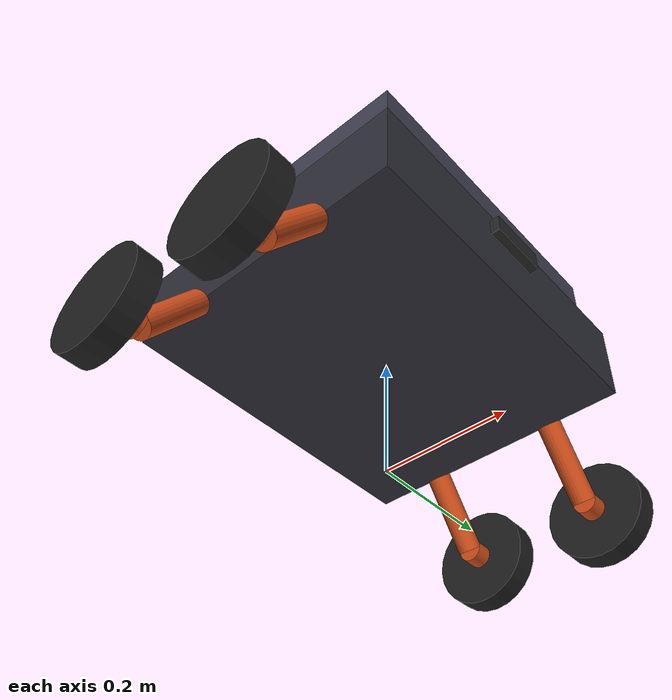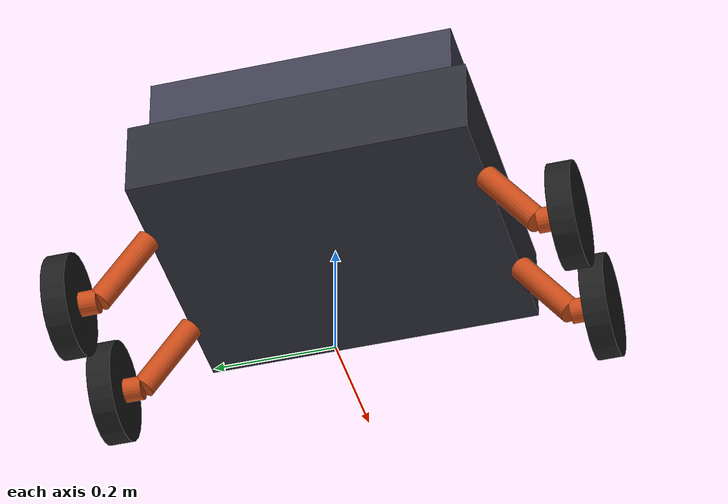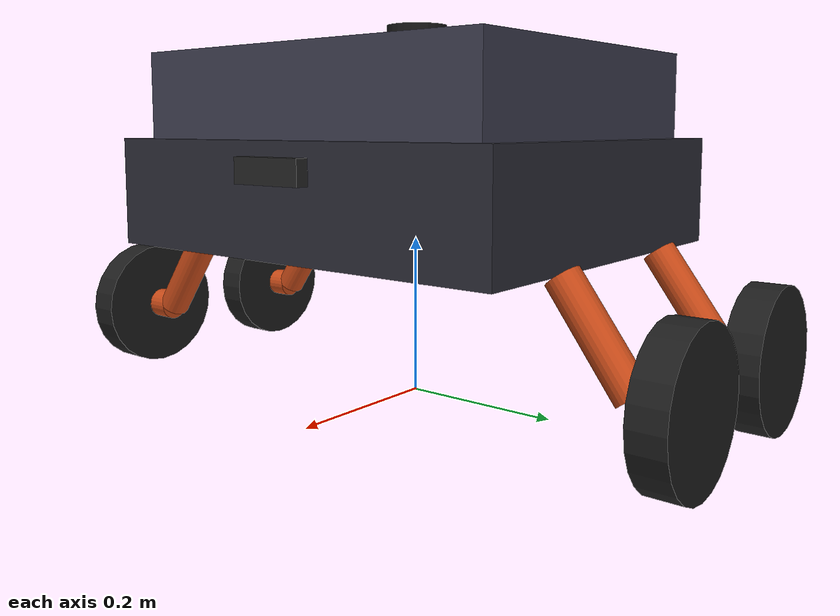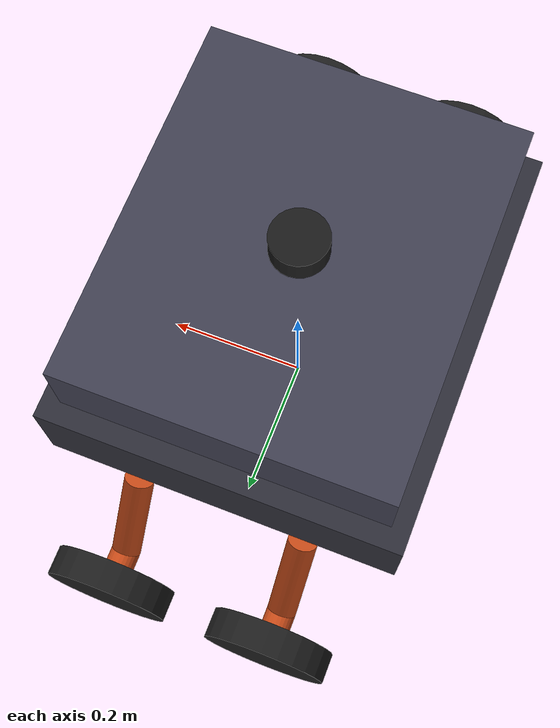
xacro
<?xml version="1.0"?>
<robot name="URSULA" xmlns:xacro="http://www.ros.org/wiki/xacro">

  <xacro:include filename="lidar.xacro"/>
  <xacro:include filename="oak_d.xacro"/>
  <xacro:include filename="gazebo_plugins.xacro"/>  <!-- ADD THIS LINE -->

  <xacro:property name="chassis_length"     value="0.480"/>
  <xacro:property name="chassis_width"      value="0.560"/>
  <xacro:property name="chassis_height"     value="0.2398"/>
  <xacro:property name="chassis_z_off"      value="0.195"/>
  <xacro:property name="chassis_center_z"   value="${chassis_z_off + chassis_height / 2.0}"/>

  <xacro:property name="base_box_height"    value="0.133"/>
  <xacro:property name="chamfer_height"     value="${chassis_height - base_box_height}"/>
  <xacro:property name="chamfer_length"     value="${chassis_length * 0.90}"/>
  <xacro:property name="chamfer_width"      value="${chassis_width  * 0.90}"/>

  <xacro:property name="base_box_z_rel"     value="${-chassis_height / 2.0 + base_box_height / 2.0}"/>
  <xacro:property name="chamfer_z_rel"      value="${-chassis_height / 2.0 + base_box_height + chamfer_height / 2.0}"/>

  <xacro:property name="wheel_radius"       value="0.085"/>
  <xacro:property name="wheel_width"        value="0.040"/>

  <xacro:property name="wheel_y_abs"        value="${chassis_width / 2.0 + 0.110 + wheel_width / 2.0}"/>
  <xacro:property name="wheel_x_front"      value="${chassis_length / 2.0 - 0.125}"/>
  <xacro:property name="wheel_z_rel"        value="${wheel_radius - chassis_center_z}"/>

  <xacro:property name="rod_radius"         value="0.020"/>
  <xacro:property name="conn_length"        value="0.050"/>
  <xacro:property name="conn_radius"        value="0.020"/>

  <xacro:property name="conn_start_y"       value="${wheel_y_abs - conn_length}"/>

  <xacro:property name="mount_y_abs"        value="${chassis_width / 2.0}"/>
  <xacro:property name="mount_z"            value="${-chassis_height / 2.0}"/>

  <xacro:property name="rod_dy"             value="${conn_start_y - mount_y_abs}"/>
  <xacro:property name="rod_dz"             value="${wheel_z_rel - mount_z}"/>
  <xacro:property name="rod_length"         value="${sqrt(rod_dy*rod_dy + rod_dz*rod_dz)}"/>

  <xacro:property name="rod_mid_y_abs"      value="${(mount_y_abs + conn_start_y) / 2.0}"/>
  <xacro:property name="rod_mid_z"          value="${(mount_z + wheel_z_rel) / 2.0}"/>

  <xacro:property name="conn_mid_y_abs"     value="${(conn_start_y + wheel_y_abs) / 2.0}"/>

  <material name="chassis_dark">
    <color rgba="0.18 0.18 0.22 1.0"/>
  </material>
  <material name="chassis_accent">
    <color rgba="0.25 0.25 0.32 1.0"/>
  </material>
  <material name="wheel_rubber">
    <color rgba="0.12 0.12 0.12 1.0"/>
  </material>
  <material name="suspension_metal">
    <color rgba="0.80 0.30 0.10 1.0"/>
  </material>

  <xacro:macro name="ursula_wheel_and_suspension" params="name parent wheel_x side_sign">

    <link name="${name}_susp_rod_link">
      <inertial>
        <origin xyz="0 0 0" rpy="0 0 0"/>
        <mass value="0.15"/>
        <inertia ixx="0.0005" ixy="0" ixz="0"
                 iyy="0.0005" iyz="0"
                 izz="0.0001"/>
      </inertial>
      <visual>
        <origin xyz="0 0 0" rpy="0 0 0"/>
        <geometry>
          <cylinder radius="${rod_radius}" length="${rod_length}"/>
        </geometry>
        <material name="suspension_metal"/>
      </visual>
      <collision>
        <origin xyz="0 0 0" rpy="0 0 0"/>
        <geometry>
          <cylinder radius="${rod_radius}" length="${rod_length}"/>
        </geometry>
      </collision>
    </link>

    <joint name="${name}_susp_rod_joint" type="fixed">
      <parent link="${parent}"/>
      <child  link="${name}_susp_rod_link"/>
      <origin xyz="${wheel_x} ${side_sign * rod_mid_y_abs} ${rod_mid_z}"
              rpy="${side_sign * 0.62832} 0 0"/>
    </joint>

    <link name="${name}_susp_conn_link">
      <inertial>
        <origin xyz="0 0 0" rpy="0 0 0"/>
        <mass value="0.05"/>
        <inertia ixx="0.0001" ixy="0" ixz="0"
                 iyy="0.0001" iyz="0"
                 izz="0.00005"/>
      </inertial>
      <visual>
        <origin xyz="0 0 0" rpy="0 0 0"/>
        <geometry>
          <cylinder radius="${conn_radius}" length="${conn_length}"/>
        </geometry>
        <material name="suspension_metal"/>
      </visual>
      <collision>
        <origin xyz="0 0 0" rpy="0 0 0"/>
        <geometry>
          <cylinder radius="${conn_radius}" length="${conn_length}"/>
        </geometry>
      </collision>
    </link>

    <joint name="${name}_susp_conn_joint" type="fixed">
      <parent link="${parent}"/>
      <child  link="${name}_susp_conn_link"/>
      <origin xyz="${wheel_x} ${side_sign * conn_mid_y_abs} ${wheel_z_rel}"
              rpy="${-side_sign * 1.5708} 0 0"/>
    </joint>

    <link name="${name}_wheel_link">
      <inertial>
        <origin xyz="0 0 0" rpy="0 0 0"/>
        <mass value="0.80"/>
        <inertia ixx="0.0015" ixy="0" ixz="0"
                 iyy="0.0010" iyz="0"
                 izz="0.0010"/>
      </inertial>
      <visual>
        <origin xyz="0 0 0" rpy="${pi/2} 0 0"/>
        <geometry>
          <cylinder radius="${wheel_radius}" length="${wheel_width}"/>
        </geometry>
        <material name="wheel_rubber"/>
      </visual>
      <collision>
        <origin xyz="0 0 0" rpy="${pi/2} 0 0"/>
        <geometry>
          <cylinder radius="${wheel_radius}" length="${wheel_width}"/>
        </geometry>
      </collision>
    </link>

    <joint name="${name}_wheel_joint" type="continuous">
      <parent link="${parent}"/>
      <child  link="${name}_wheel_link"/>
      <origin xyz="${wheel_x} ${side_sign * wheel_y_abs} ${wheel_z_rel}"
              rpy="0 0 0"/>
      <axis xyz="0 1 0"/>
      <dynamics damping="0.5" friction="0.01"/>
      <limit effort="10.0" velocity="10.0"/>
    </joint>

  </xacro:macro>

  <xacro:macro name="ursula_wheels" params="parent">
    <xacro:ursula_wheel_and_suspension
        name="front_left"  parent="${parent}"
        wheel_x="${wheel_x_front}"  side_sign="1"/>
    <xacro:ursula_wheel_and_suspension
        name="front_right" parent="${parent}"
        wheel_x="${wheel_x_front}"  side_sign="-1"/>
    <xacro:ursula_wheel_and_suspension
        name="rear_left"   parent="${parent}"
        wheel_x="${-wheel_x_front}" side_sign="1"/>
    <xacro:ursula_wheel_and_suspension
        name="rear_right"  parent="${parent}"
        wheel_x="${-wheel_x_front}" side_sign="-1"/>
  </xacro:macro>

  <link name="base_link">
    <inertial>
      <origin xyz="0 0 0" rpy="0 0 0"/>
      <mass value="0.001"/>
      <inertia ixx="0.0001" ixy="0" ixz="0"
               iyy="0.0001" iyz="0"
               izz="0.0001"/>
    </inertial>
  </link>

  <link name="chassis_link">
    <inertial>
      <origin xyz="0 0 0" rpy="0 0 0"/>
      <mass value="15.0"/>
      <inertia ixx="0.350" ixy="0" ixz="0"
               iyy="0.300" iyz="0"
               izz="0.450"/>
    </inertial>

    <visual>
      <origin xyz="0 0 ${base_box_z_rel}" rpy="0 0 0"/>
      <geometry>
        <box size="${chassis_length} ${chassis_width} ${base_box_height}"/>
      </geometry>
      <material name="chassis_dark"/>
    </visual>
    <collision>
      <origin xyz="0 0 ${base_box_z_rel}" rpy="0 0 0"/>
      <geometry>
        <box size="${chassis_length} ${chassis_width} ${base_box_height}"/>
      </geometry>
    </collision>

    <visual>
      <origin xyz="0 0 ${chamfer_z_rel}" rpy="0 0 0"/>
      <geometry>
        <box size="${chamfer_length} ${chamfer_width} ${chamfer_height}"/>
      </geometry>
      <material name="chassis_accent"/>
    </visual>
    <collision>
      <origin xyz="0 0 ${chamfer_z_rel}" rpy="0 0 0"/>
      <geometry>
        <box size="${chamfer_length} ${chamfer_width} ${chamfer_height}"/>
      </geometry>
    </collision>
  </link>

  <joint name="chassis_joint" type="fixed">
    <parent link="base_link"/>
    <child  link="chassis_link"/>
    <origin xyz="0 0 ${chassis_center_z}" rpy="0 0 0"/>
  </joint>

  <xacro:ursula_wheels parent="chassis_link"/>

  <xacro:slamtec_rplidar_a3 parent="chassis_link">
    <origin xyz="${chassis_length / 2.0 - 0.2419} 0 ${0.4485 - chassis_center_z}" rpy="0 0 3.14159"/>
  </xacro:slamtec_rplidar_a3>

  <xacro:luxonis_oak_d parent="chassis_link">
    <origin xyz="${chassis_length / 2.0 + 0.001} 0 ${0.1005 - chassis_height / 2.0}" rpy="0 0 0"/>
  </xacro:luxonis_oak_d>

  <!-- Instantiate all Gazebo plugins -->
  <xacro:ursula_gazebo/>

</robot>

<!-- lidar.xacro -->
<robot xmlns:xacro="http://www.ros.org/wiki/xacro">

  <xacro:macro name="slamtec_rplidar_a3" params="parent *origin">

    <link name="lidar_link">
      <inertial>
        <origin xyz="0 0 0" rpy="0 0 0"/>
        <mass value="0.190"/>
        <inertia ixx="0.0001" ixy="0" ixz="0"
                 iyy="0.0001" iyz="0"
                 izz="0.0001"/>
      </inertial>
      <visual>
        <origin xyz="0 0 0" rpy="0 0 0"/>
        <geometry>
          <cylinder radius="0.038" length="0.041"/>
        </geometry>
        <material name="lidar_black">
          <color rgba="0.1 0.1 0.1 1.0"/>
        </material>
      </visual>
      <collision>
        <origin xyz="0 0 0" rpy="0 0 0"/>
        <geometry>
          <cylinder radius="0.038" length="0.041"/>
        </geometry>
      </collision>
    </link>

    <joint name="lidar_joint" type="fixed">
      <parent link="${parent}"/>
      <child link="lidar_link"/>
      <xacro:insert_block name="origin"/>
    </joint>

    <link name="lidar_scan_link"/>

    <joint name="lidar_scan_joint" type="fixed">
      <parent link="lidar_link"/>
      <child link="lidar_scan_link"/>
      <origin xyz="0 0 0" rpy="0 0 0"/>
    </joint>

  </xacro:macro>

</robot>

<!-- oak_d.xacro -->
<robot xmlns:xacro="http://www.ros.org/wiki/xacro">

  <xacro:macro name="luxonis_oak_d" params="parent *origin">

    <link name="oak_d_camera_link">
      <inertial>
        <origin xyz="0 0 0" rpy="0 0 0"/>
        <mass value="0.110"/>
        <inertia ixx="0.00002" ixy="0" ixz="0"
                 iyy="0.00010" iyz="0"
                 izz="0.00010"/>
      </inertial>
      <visual>
        <origin xyz="0 0 0" rpy="0 0 0"/>
        <geometry>
          <box size="0.030 0.098 0.030"/>
        </geometry>
        <material name="oak_d_color">
          <color rgba="0.15 0.15 0.15 1.0"/>
        </material>
      </visual>
      <collision>
        <origin xyz="0 0 0" rpy="0 0 0"/>
        <geometry>
          <box size="0.030 0.098 0.030"/>
        </geometry>
      </collision>
    </link>

    <joint name="oak_d_camera_joint" type="fixed">
      <parent link="${parent}"/>
      <child link="oak_d_camera_link"/>
      <xacro:insert_block name="origin"/>
    </joint>

    <link name="oak_d_rgb_camera_frame"/>
    <joint name="oak_d_rgb_camera_joint" type="fixed">
      <parent link="oak_d_camera_link"/>
      <child link="oak_d_rgb_camera_frame"/>
      <origin xyz="0 0 0" rpy="0 0 0"/>
    </joint>

    <link name="oak_d_left_camera_frame"/>
    <joint name="oak_d_left_camera_joint" type="fixed">
      <parent link="oak_d_camera_link"/>
      <child link="oak_d_left_camera_frame"/>
      <origin xyz="0 0.0375 0" rpy="0 0 0"/>
    </joint>

    <link name="oak_d_right_camera_frame"/>
    <joint name="oak_d_right_camera_joint" type="fixed">
      <parent link="oak_d_camera_link"/>
      <child link="oak_d_right_camera_frame"/>
      <origin xyz="0 -0.0375 0" rpy="0 0 0"/>
    </joint>

    <link name="oak_d_imu_frame"/>
    <joint name="oak_d_imu_joint" type="fixed">
      <parent link="oak_d_camera_link"/>
      <child link="oak_d_imu_frame"/>
      <origin xyz="0 0 0" rpy="0 0 0"/>
    </joint>

  </xacro:macro>

</robot>
